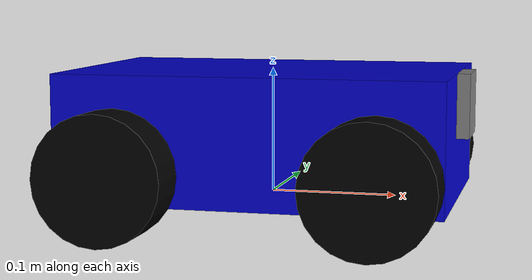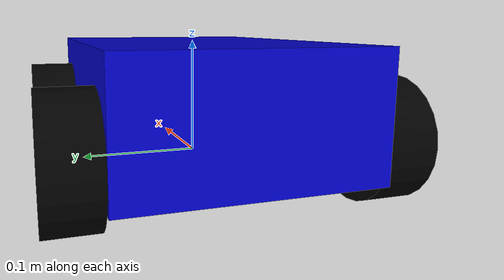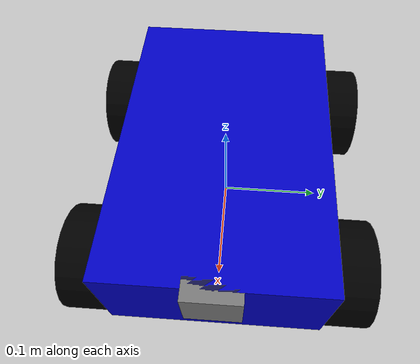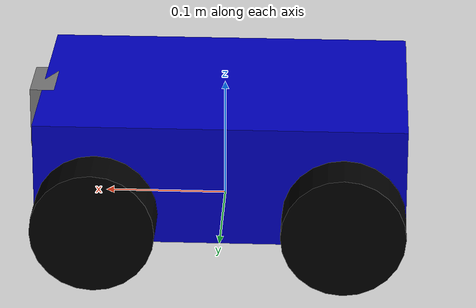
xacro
<?xml version="1.0"?>
<robot xmlns:xacro="http://www.ros.org/wiki/xacro" name="ai_robot">

  <xacro:include filename="$(find ai_robot_core)/urdf/gazebo_control.xacro" />

  <link name="base_footprint"/>

  <joint name="base_joint" type="fixed">
    <parent link="base_footprint"/>
    <child link="base_link"/>
    <origin xyz="0 0 0.05" rpy="0 0 0"/>
  </joint>

  <link name="base_link">
    <visual>
      <geometry>
        <box size="0.3 0.2 0.1"/>
      </geometry>
      <material name="blue">
        <color rgba="0.0 0.0 0.8 1.0"/>
      </material>
    </visual>
    <collision>
      <geometry>
        <box size="0.3 0.2 0.1"/>
      </geometry>
    </collision>
    <inertial>
        <mass value="5"/>
        <inertia ixx="0.04" ixy="0.0" ixz="0.0" iyy="0.07" iyz="0.0" izz="0.09"/>
    </inertial>
  </link>

  <xacro:macro name="wheel" params="prefix x_offset y_offset">
    <link name="${prefix}_wheel_link">
      <visual>
        <geometry>
          <cylinder radius="0.05" length="0.04"/>
        </geometry>
        <material name="black">
          <color rgba="0.0 0.0 0.0 1.0"/>
        </material>
      </visual>
      <collision>
        <geometry>
          <cylinder radius="0.05" length="0.04"/>
        </geometry>
      </collision>
      <inertial>
        <mass value="0.5"/>
        <inertia ixx="0.0004" ixy="0.0" ixz="0.0" iyy="0.0004" iyz="0.0" izz="0.0008"/>
      </inertial>
    </link>

    <joint name="${prefix}_wheel_joint" type="continuous">
      <parent link="base_link"/>
      <child link="${prefix}_wheel_link"/>
      <origin xyz="${x_offset} ${y_offset} -0.025" rpy="-1.5707 0 0"/>
      <axis xyz="0 0 1"/>
    </joint>
  </xacro:macro>

  <xacro:wheel prefix="front_left" x_offset="0.1" y_offset="0.12"/>
  <xacro:wheel prefix="front_right" x_offset="0.1" y_offset="-0.12"/>
  <xacro:wheel prefix="rear_left" x_offset="-0.1" y_offset="0.12"/>
  <xacro:wheel prefix="rear_right" x_offset="-0.1" y_offset="-0.12"/>

  <link name="camera_link">
    <visual>
      <geometry>
        <box size="0.02 0.05 0.05"/>
      </geometry>
      <material name="grey">
        <color rgba="0.5 0.5 0.5 1.0"/>
      </material>
    </visual>
     <collision>
      <geometry>
        <box size="0.02 0.05 0.05"/>
      </geometry>
    </collision>
    <inertial>
        <mass value="0.1"/>
        <inertia ixx="1e-6" ixy="0" ixz="0" iyy="1e-6" iyz="0" izz="1e-6"/>
    </inertial>
  </link>

  <joint name="camera_joint" type="fixed">
    <parent link="base_link"/>
    <child link="camera_link"/>
    <origin xyz="0.15 0 0.025" rpy="0 0 0"/>
  </joint>

  <link name="camera_depth_optical_frame"/>

  <joint name="camera_depth_optical_joint" type="fixed">
    <parent link="camera_link"/>
    <child link="camera_depth_optical_frame"/>
    <origin xyz="0 0 0" rpy="-1.5707 0 -1.5707"/>
  </joint>

</robot>
